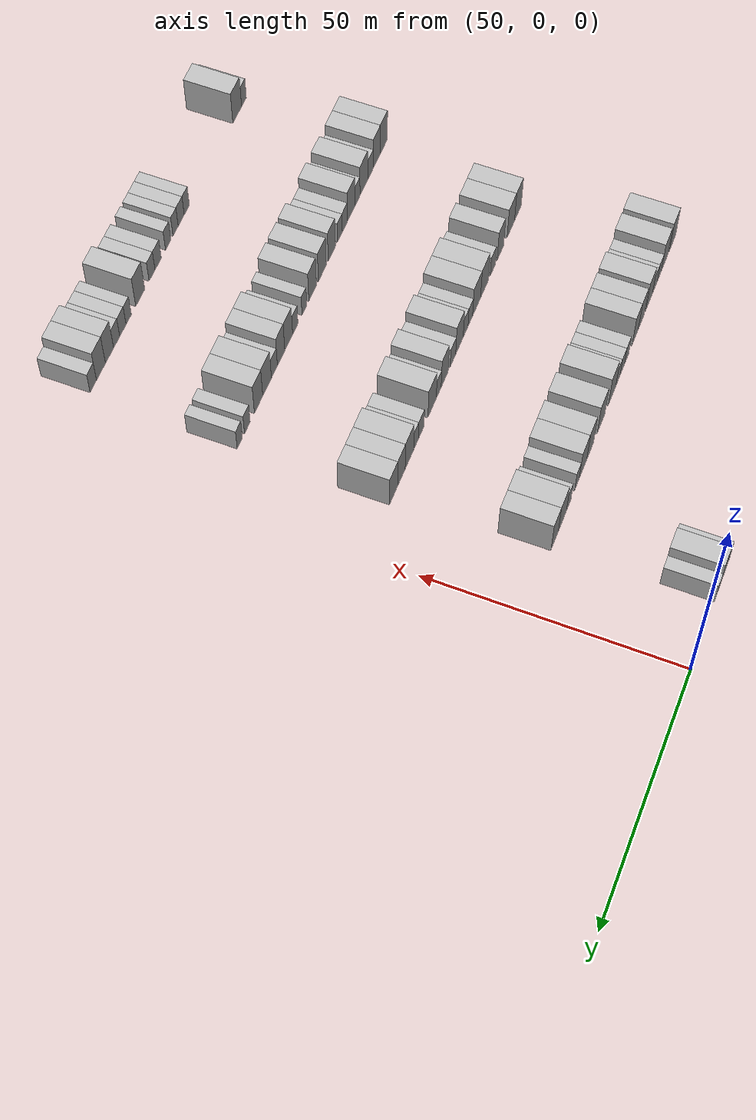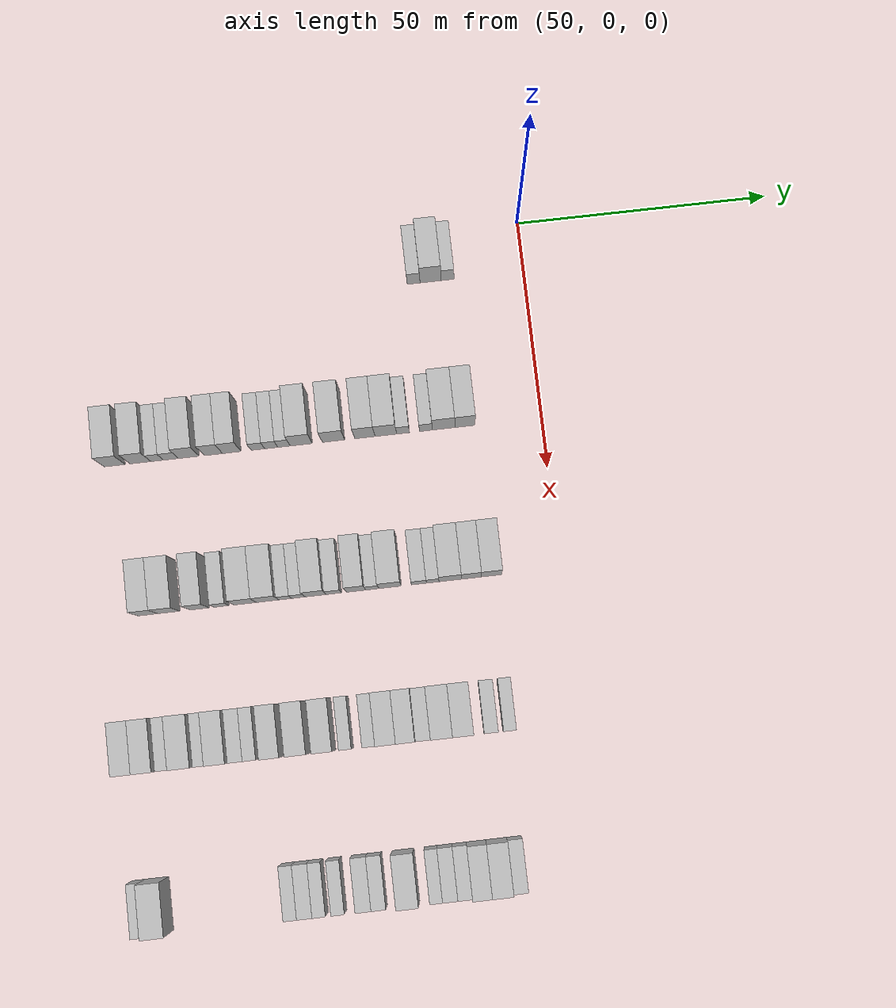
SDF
<sdf version="1.6">
 <world name="default">
  <model name="building_334">
   <static>1</static>
   <pose>55.0000 -22.0945 0 0.000000 0.000000 0.000000</pose>
   <link name="link">
    <pose>0 0 3.00 0 0 0</pose>
    <collision name="collision"><geometry><box><size>10.0000 2.5798 6.0000</size></box></geometry></collision>
    <visual name="visual">
     <cast_shadows>0</cast_shadows>
     <geometry><box><size>10.0000 2.5798 6.0000</size></box></geometry>
     <material>
      <script>
       <uri>model://HANNAS_wall/materials/scripts</uri>
       <uri>model://HANNAS_wall/materials/textures</uri>
       <name>vrc/HANNAS_wall</name>
      </script>
     </material>
    </visual>
   </link>
  </model>
  <model name="building_335">
   <static>1</static>
   <pose>55.0000 -18.6935 0 0.000000 0.000000 0.000000</pose>
   <link name="link">
    <pose>0 0 4.50 0 0 0</pose>
    <collision name="collision"><geometry><box><size>10.0000 4.2221 9.0000</size></box></geometry></collision>
    <visual name="visual">
     <cast_shadows>0</cast_shadows>
     <geometry><box><size>10.0000 4.2221 9.0000</size></box></geometry>
     <material>
      <script>
       <uri>model://HANNAS_wall/materials/scripts</uri>
       <uri>model://HANNAS_wall/materials/textures</uri>
       <name>vrc/HANNAS_wall</name>
      </script>
     </material>
    </visual>
   </link>
  </model>
  <model name="building_336">
   <static>1</static>
   <pose>55.0000 -15.2851 0 0.000000 0.000000 0.000000</pose>
   <link name="link">
    <pose>0 0 3.00 0 0 0</pose>
    <collision name="collision"><geometry><box><size>10.0000 2.5948 6.0000</size></box></geometry></collision>
    <visual name="visual">
     <cast_shadows>0</cast_shadows>
     <geometry><box><size>10.0000 2.5948 6.0000</size></box></geometry>
     <material>
      <script>
       <uri>model://HANNAS_wall/materials/scripts</uri>
       <uri>model://HANNAS_wall/materials/textures</uri>
       <name>vrc/HANNAS_wall</name>
      </script>
     </material>
    </visual>
   </link>
  </model>
  <model name="building_556">
   <static>1</static>
   <pose>85.0000 -84.5237 0 0.000000 0.000000 0.000000</pose>
   <link name="link">
    <pose>0 0 4.50 0 0 0</pose>
    <collision name="collision"><geometry><box><size>10.0000 4.1352 9.0000</size></box></geometry></collision>
    <visual name="visual">
     <cast_shadows>0</cast_shadows>
     <geometry><box><size>10.0000 4.1352 9.0000</size></box></geometry>
     <material>
      <script>
       <uri>model://HANNAS_wall/materials/scripts</uri>
       <uri>model://HANNAS_wall/materials/textures</uri>
       <name>vrc/HANNAS_wall</name>
      </script>
     </material>
    </visual>
   </link>
  </model>
  <model name="building_557">
   <static>1</static>
   <pose>85.0000 -79.4090 0 0.000000 0.000000 0.000000</pose>
   <link name="link">
    <pose>0 0 4.50 0 0 0</pose>
    <collision name="collision"><geometry><box><size>10.0000 4.0942 9.0000</size></box></geometry></collision>
    <visual name="visual">
     <cast_shadows>0</cast_shadows>
     <geometry><box><size>10.0000 4.0942 9.0000</size></box></geometry>
     <material>
      <script>
       <uri>model://HANNAS_wall/materials/scripts</uri>
       <uri>model://HANNAS_wall/materials/textures</uri>
       <name>vrc/HANNAS_wall</name>
      </script>
     </material>
    </visual>
   </link>
  </model>
  <model name="building_558">
   <static>1</static>
   <pose>85.0000 -76.1100 0 0.000000 0.000000 0.000000</pose>
   <link name="link">
    <pose>0 0 3.00 0 0 0</pose>
    <collision name="collision"><geometry><box><size>10.0000 2.5038 6.0000</size></box></geometry></collision>
    <visual name="visual">
     <cast_shadows>0</cast_shadows>
     <geometry><box><size>10.0000 2.5038 6.0000</size></box></geometry>
     <material>
      <script>
       <uri>model://HANNAS_wall/materials/scripts</uri>
       <uri>model://HANNAS_wall/materials/textures</uri>
       <name>vrc/HANNAS_wall</name>
      </script>
     </material>
    </visual>
   </link>
  </model>
  <model name="building_559">
   <static>1</static>
   <pose>85.0000 -73.3860 0 0.000000 0.000000 0.000000</pose>
   <link name="link">
    <pose>0 0 3.00 0 0 0</pose>
    <collision name="collision"><geometry><box><size>10.0000 2.9442 6.0000</size></box></geometry></collision>
    <visual name="visual">
     <cast_shadows>0</cast_shadows>
     <geometry><box><size>10.0000 2.9442 6.0000</size></box></geometry>
     <material>
      <script>
       <uri>model://HANNAS_wall/materials/scripts</uri>
       <uri>model://HANNAS_wall/materials/textures</uri>
       <name>vrc/HANNAS_wall</name>
      </script>
     </material>
    </visual>
   </link>
  </model>
  <model name="building_560">
   <static>1</static>
   <pose>85.0000 -69.8655 0 0.000000 0.000000 0.000000</pose>
   <link name="link">
    <pose>0 0 4.50 0 0 0</pose>
    <collision name="collision"><geometry><box><size>10.0000 4.0967 9.0000</size></box></geometry></collision>
    <visual name="visual">
     <cast_shadows>0</cast_shadows>
     <geometry><box><size>10.0000 4.0967 9.0000</size></box></geometry>
     <material>
      <script>
       <uri>model://HANNAS_wall/materials/scripts</uri>
       <uri>model://HANNAS_wall/materials/textures</uri>
       <name>vrc/HANNAS_wall</name>
      </script>
     </material>
    </visual>
   </link>
  </model>
  <model name="building_561">
   <static>1</static>
   <pose>85.0000 -65.0133 0 0.000000 0.000000 0.000000</pose>
   <link name="link">
    <pose>0 0 4.50 0 0 0</pose>
    <collision name="collision"><geometry><box><size>10.0000 3.6078 9.0000</size></box></geometry></collision>
    <visual name="visual">
     <cast_shadows>0</cast_shadows>
     <geometry><box><size>10.0000 3.6078 9.0000</size></box></geometry>
     <material>
      <script>
       <uri>model://HANNAS_wall/materials/scripts</uri>
       <uri>model://HANNAS_wall/materials/textures</uri>
       <name>vrc/HANNAS_wall</name>
      </script>
     </material>
    </visual>
   </link>
  </model>
  <model name="building_562">
   <static>1</static>
   <pose>85.0000 -61.3771 0 0.000000 0.000000 0.000000</pose>
   <link name="link">
    <pose>0 0 4.50 0 0 0</pose>
    <collision name="collision"><geometry><box><size>10.0000 3.6647 9.0000</size></box></geometry></collision>
    <visual name="visual">
     <cast_shadows>0</cast_shadows>
     <geometry><box><size>10.0000 3.6647 9.0000</size></box></geometry>
     <material>
      <script>
       <uri>model://HANNAS_wall/materials/scripts</uri>
       <uri>model://HANNAS_wall/materials/textures</uri>
       <name>vrc/HANNAS_wall</name>
      </script>
     </material>
    </visual>
   </link>
  </model>
  <model name="building_563">
   <static>1</static>
   <pose>85.0000 -56.2030 0 0.000000 0.000000 0.000000</pose>
   <link name="link">
    <pose>0 0 3.00 0 0 0</pose>
    <collision name="collision"><geometry><box><size>10.0000 2.6834 6.0000</size></box></geometry></collision>
    <visual name="visual">
     <cast_shadows>0</cast_shadows>
     <geometry><box><size>10.0000 2.6834 6.0000</size></box></geometry>
     <material>
      <script>
       <uri>model://HANNAS_wall/materials/scripts</uri>
       <uri>model://HANNAS_wall/materials/textures</uri>
       <name>vrc/HANNAS_wall</name>
      </script>
     </material>
    </visual>
   </link>
  </model>
  <model name="building_564">
   <static>1</static>
   <pose>85.0000 -53.5623 0 0.000000 0.000000 0.000000</pose>
   <link name="link">
    <pose>0 0 3.00 0 0 0</pose>
    <collision name="collision"><geometry><box><size>10.0000 2.5980 6.0000</size></box></geometry></collision>
    <visual name="visual">
     <cast_shadows>0</cast_shadows>
     <geometry><box><size>10.0000 2.5980 6.0000</size></box></geometry>
     <material>
      <script>
       <uri>model://HANNAS_wall/materials/scripts</uri>
       <uri>model://HANNAS_wall/materials/textures</uri>
       <name>vrc/HANNAS_wall</name>
      </script>
     </material>
    </visual>
   </link>
  </model>
  <model name="building_565">
   <static>1</static>
   <pose>85.0000 -51.0397 0 0.000000 0.000000 0.000000</pose>
   <link name="link">
    <pose>0 0 3.00 0 0 0</pose>
    <collision name="collision"><geometry><box><size>10.0000 2.4472 6.0000</size></box></geometry></collision>
    <visual name="visual">
     <cast_shadows>0</cast_shadows>
     <geometry><box><size>10.0000 2.4472 6.0000</size></box></geometry>
     <material>
      <script>
       <uri>model://HANNAS_wall/materials/scripts</uri>
       <uri>model://HANNAS_wall/materials/textures</uri>
       <name>vrc/HANNAS_wall</name>
      </script>
     </material>
    </visual>
   </link>
  </model>
  <model name="building_566">
   <static>1</static>
   <pose>85.0000 -47.6352 0 0.000000 0.000000 0.000000</pose>
   <link name="link">
    <pose>0 0 4.50 0 0 0</pose>
    <collision name="collision"><geometry><box><size>10.0000 4.3616 9.0000</size></box></geometry></collision>
    <visual name="visual">
     <cast_shadows>0</cast_shadows>
     <geometry><box><size>10.0000 4.3616 9.0000</size></box></geometry>
     <material>
      <script>
       <uri>model://HANNAS_wall/materials/scripts</uri>
       <uri>model://HANNAS_wall/materials/textures</uri>
       <name>vrc/HANNAS_wall</name>
      </script>
     </material>
    </visual>
   </link>
  </model>
  <model name="building_567">
   <static>1</static>
   <pose>85.0000 -41.2469 0 0.000000 0.000000 0.000000</pose>
   <link name="link">
    <pose>0 0 4.50 0 0 0</pose>
    <collision name="collision"><geometry><box><size>10.0000 4.4150 9.0000</size></box></geometry></collision>
    <visual name="visual">
     <cast_shadows>0</cast_shadows>
     <geometry><box><size>10.0000 4.4150 9.0000</size></box></geometry>
     <material>
      <script>
       <uri>model://HANNAS_wall/materials/scripts</uri>
       <uri>model://HANNAS_wall/materials/textures</uri>
       <name>vrc/HANNAS_wall</name>
      </script>
     </material>
    </visual>
   </link>
  </model>
  <model name="building_568">
   <static>1</static>
   <pose>85.0000 -35.0327 0 0.000000 0.000000 0.000000</pose>
   <link name="link">
    <pose>0 0 4.50 0 0 0</pose>
    <collision name="collision"><geometry><box><size>10.0000 4.0135 9.0000</size></box></geometry></collision>
    <visual name="visual">
     <cast_shadows>0</cast_shadows>
     <geometry><box><size>10.0000 4.0135 9.0000</size></box></geometry>
     <material>
      <script>
       <uri>model://HANNAS_wall/materials/scripts</uri>
       <uri>model://HANNAS_wall/materials/textures</uri>
       <name>vrc/HANNAS_wall</name>
      </script>
     </material>
    </visual>
   </link>
  </model>
  <model name="building_569">
   <static>1</static>
   <pose>85.0000 -30.8836 0 0.000000 0.000000 0.000000</pose>
   <link name="link">
    <pose>0 0 4.50 0 0 0</pose>
    <collision name="collision"><geometry><box><size>10.0000 4.2846 9.0000</size></box></geometry></collision>
    <visual name="visual">
     <cast_shadows>0</cast_shadows>
     <geometry><box><size>10.0000 4.2846 9.0000</size></box></geometry>
     <material>
      <script>
       <uri>model://HANNAS_wall/materials/scripts</uri>
       <uri>model://HANNAS_wall/materials/textures</uri>
       <name>vrc/HANNAS_wall</name>
      </script>
     </material>
    </visual>
   </link>
  </model>
  <model name="building_570">
   <static>1</static>
   <pose>85.0000 -27.4713 0 0.000000 0.000000 0.000000</pose>
   <link name="link">
    <pose>0 0 3.00 0 0 0</pose>
    <collision name="collision"><geometry><box><size>10.0000 2.5401 6.0000</size></box></geometry></collision>
    <visual name="visual">
     <cast_shadows>0</cast_shadows>
     <geometry><box><size>10.0000 2.5401 6.0000</size></box></geometry>
     <material>
      <script>
       <uri>model://HANNAS_wall/materials/scripts</uri>
       <uri>model://HANNAS_wall/materials/textures</uri>
       <name>vrc/HANNAS_wall</name>
      </script>
     </material>
    </visual>
   </link>
  </model>
  <model name="building_571">
   <static>1</static>
   <pose>85.0000 -22.9350 0 0.000000 0.000000 0.000000</pose>
   <link name="link">
    <pose>0 0 3.00 0 0 0</pose>
    <collision name="collision"><geometry><box><size>10.0000 2.5324 6.0000</size></box></geometry></collision>
    <visual name="visual">
     <cast_shadows>0</cast_shadows>
     <geometry><box><size>10.0000 2.5324 6.0000</size></box></geometry>
     <material>
      <script>
       <uri>model://HANNAS_wall/materials/scripts</uri>
       <uri>model://HANNAS_wall/materials/textures</uri>
       <name>vrc/HANNAS_wall</name>
      </script>
     </material>
    </visual>
   </link>
  </model>
  <model name="building_572">
   <static>1</static>
   <pose>85.0000 -19.4383 0 0.000000 0.000000 0.000000</pose>
   <link name="link">
    <pose>0 0 4.50 0 0 0</pose>
    <collision name="collision"><geometry><box><size>10.0000 4.4609 9.0000</size></box></geometry></collision>
    <visual name="visual">
     <cast_shadows>0</cast_shadows>
     <geometry><box><size>10.0000 4.4609 9.0000</size></box></geometry>
     <material>
      <script>
       <uri>model://HANNAS_wall/materials/scripts</uri>
       <uri>model://HANNAS_wall/materials/textures</uri>
       <name>vrc/HANNAS_wall</name>
      </script>
     </material>
    </visual>
   </link>
  </model>
  <model name="building_573">
   <static>1</static>
   <pose>85.0000 -15.2136 0 0.000000 0.000000 0.000000</pose>
   <link name="link">
    <pose>0 0 4.50 0 0 0</pose>
    <collision name="collision"><geometry><box><size>10.0000 3.9884 9.0000</size></box></geometry></collision>
    <visual name="visual">
     <cast_shadows>0</cast_shadows>
     <geometry><box><size>10.0000 3.9884 9.0000</size></box></geometry>
     <material>
      <script>
       <uri>model://HANNAS_wall/materials/scripts</uri>
       <uri>model://HANNAS_wall/materials/textures</uri>
       <name>vrc/HANNAS_wall</name>
      </script>
     </material>
    </visual>
   </link>
  </model>
  <model name="building_782">
   <static>1</static>
   <pose>115.0000 -80.4992 0 0.000000 0.000000 0.000000</pose>
   <link name="link">
    <pose>0 0 4.50 0 0 0</pose>
    <collision name="collision"><geometry><box><size>10.0000 3.8783 9.0000</size></box></geometry></collision>
    <visual name="visual">
     <cast_shadows>0</cast_shadows>
     <geometry><box><size>10.0000 3.8783 9.0000</size></box></geometry>
     <material>
      <script>
       <uri>model://HANNAS_wall/materials/scripts</uri>
       <uri>model://HANNAS_wall/materials/textures</uri>
       <name>vrc/HANNAS_wall</name>
      </script>
     </material>
    </visual>
   </link>
  </model>
  <model name="building_783">
   <static>1</static>
   <pose>115.0000 -76.4291 0 0.000000 0.000000 0.000000</pose>
   <link name="link">
    <pose>0 0 4.50 0 0 0</pose>
    <collision name="collision"><geometry><box><size>10.0000 4.2618 9.0000</size></box></geometry></collision>
    <visual name="visual">
     <cast_shadows>0</cast_shadows>
     <geometry><box><size>10.0000 4.2618 9.0000</size></box></geometry>
     <material>
      <script>
       <uri>model://HANNAS_wall/materials/scripts</uri>
       <uri>model://HANNAS_wall/materials/textures</uri>
       <name>vrc/HANNAS_wall</name>
      </script>
     </material>
    </visual>
   </link>
  </model>
  <model name="building_784">
   <static>1</static>
   <pose>115.0000 -70.4539 0 0.000000 0.000000 0.000000</pose>
   <link name="link">
    <pose>0 0 4.50 0 0 0</pose>
    <collision name="collision"><geometry><box><size>10.0000 3.6887 9.0000</size></box></geometry></collision>
    <visual name="visual">
     <cast_shadows>0</cast_shadows>
     <geometry><box><size>10.0000 3.6887 9.0000</size></box></geometry>
     <material>
      <script>
       <uri>model://HANNAS_wall/materials/scripts</uri>
       <uri>model://HANNAS_wall/materials/textures</uri>
       <name>vrc/HANNAS_wall</name>
      </script>
     </material>
    </visual>
   </link>
  </model>
  <model name="building_785">
   <static>1</static>
   <pose>115.0000 -66.1704 0 0.000000 0.000000 0.000000</pose>
   <link name="link">
    <pose>0 0 3.00 0 0 0</pose>
    <collision name="collision"><geometry><box><size>10.0000 2.8781 6.0000</size></box></geometry></collision>
    <visual name="visual">
     <cast_shadows>0</cast_shadows>
     <geometry><box><size>10.0000 2.8781 6.0000</size></box></geometry>
     <material>
      <script>
       <uri>model://HANNAS_wall/materials/scripts</uri>
       <uri>model://HANNAS_wall/materials/textures</uri>
       <name>vrc/HANNAS_wall</name>
      </script>
     </material>
    </visual>
   </link>
  </model>
  <model name="building_786">
   <static>1</static>
   <pose>115.0000 -61.5291 0 0.000000 0.000000 0.000000</pose>
   <link name="link">
    <pose>0 0 4.50 0 0 0</pose>
    <collision name="collision"><geometry><box><size>10.0000 4.4046 9.0000</size></box></geometry></collision>
    <visual name="visual">
     <cast_shadows>0</cast_shadows>
     <geometry><box><size>10.0000 4.4046 9.0000</size></box></geometry>
     <material>
      <script>
       <uri>model://HANNAS_wall/materials/scripts</uri>
       <uri>model://HANNAS_wall/materials/textures</uri>
       <name>vrc/HANNAS_wall</name>
      </script>
     </material>
    </visual>
   </link>
  </model>
  <model name="building_787">
   <static>1</static>
   <pose>115.0000 -57.1356 0 0.000000 0.000000 0.000000</pose>
   <link name="link">
    <pose>0 0 4.50 0 0 0</pose>
    <collision name="collision"><geometry><box><size>10.0000 4.3823 9.0000</size></box></geometry></collision>
    <visual name="visual">
     <cast_shadows>0</cast_shadows>
     <geometry><box><size>10.0000 4.3823 9.0000</size></box></geometry>
     <material>
      <script>
       <uri>model://HANNAS_wall/materials/scripts</uri>
       <uri>model://HANNAS_wall/materials/textures</uri>
       <name>vrc/HANNAS_wall</name>
      </script>
     </material>
    </visual>
   </link>
  </model>
  <model name="building_788">
   <static>1</static>
   <pose>115.0000 -53.6955 0 0.000000 0.000000 0.000000</pose>
   <link name="link">
    <pose>0 0 3.00 0 0 0</pose>
    <collision name="collision"><geometry><box><size>10.0000 2.4979 6.0000</size></box></geometry></collision>
    <visual name="visual">
     <cast_shadows>0</cast_shadows>
     <geometry><box><size>10.0000 2.4979 6.0000</size></box></geometry>
     <material>
      <script>
       <uri>model://HANNAS_wall/materials/scripts</uri>
       <uri>model://HANNAS_wall/materials/textures</uri>
       <name>vrc/HANNAS_wall</name>
      </script>
     </material>
    </visual>
   </link>
  </model>
  <model name="building_789">
   <static>1</static>
   <pose>115.0000 -51.1354 0 0.000000 0.000000 0.000000</pose>
   <link name="link">
    <pose>0 0 3.00 0 0 0</pose>
    <collision name="collision"><geometry><box><size>10.0000 2.6223 6.0000</size></box></geometry></collision>
    <visual name="visual">
     <cast_shadows>0</cast_shadows>
     <geometry><box><size>10.0000 2.6223 6.0000</size></box></geometry>
     <material>
      <script>
       <uri>model://HANNAS_wall/materials/scripts</uri>
       <uri>model://HANNAS_wall/materials/textures</uri>
       <name>vrc/HANNAS_wall</name>
      </script>
     </material>
    </visual>
   </link>
  </model>
  <model name="building_790">
   <static>1</static>
   <pose>115.0000 -47.7813 0 0.000000 0.000000 0.000000</pose>
   <link name="link">
    <pose>0 0 4.50 0 0 0</pose>
    <collision name="collision"><geometry><box><size>10.0000 4.0859 9.0000</size></box></geometry></collision>
    <visual name="visual">
     <cast_shadows>0</cast_shadows>
     <geometry><box><size>10.0000 4.0859 9.0000</size></box></geometry>
     <material>
      <script>
       <uri>model://HANNAS_wall/materials/scripts</uri>
       <uri>model://HANNAS_wall/materials/textures</uri>
       <name>vrc/HANNAS_wall</name>
      </script>
     </material>
    </visual>
   </link>
  </model>
  <model name="building_791">
   <static>1</static>
   <pose>115.0000 -44.2460 0 0.000000 0.000000 0.000000</pose>
   <link name="link">
    <pose>0 0 3.00 0 0 0</pose>
    <collision name="collision"><geometry><box><size>10.0000 2.9849 6.0000</size></box></geometry></collision>
    <visual name="visual">
     <cast_shadows>0</cast_shadows>
     <geometry><box><size>10.0000 2.9849 6.0000</size></box></geometry>
     <material>
      <script>
       <uri>model://HANNAS_wall/materials/scripts</uri>
       <uri>model://HANNAS_wall/materials/textures</uri>
       <name>vrc/HANNAS_wall</name>
      </script>
     </material>
    </visual>
   </link>
  </model>
  <model name="building_792">
   <static>1</static>
   <pose>115.0000 -39.8750 0 0.000000 0.000000 0.000000</pose>
   <link name="link">
    <pose>0 0 4.50 0 0 0</pose>
    <collision name="collision"><geometry><box><size>10.0000 3.7569 9.0000</size></box></geometry></collision>
    <visual name="visual">
     <cast_shadows>0</cast_shadows>
     <geometry><box><size>10.0000 3.7569 9.0000</size></box></geometry>
     <material>
      <script>
       <uri>model://HANNAS_wall/materials/scripts</uri>
       <uri>model://HANNAS_wall/materials/textures</uri>
       <name>vrc/HANNAS_wall</name>
      </script>
     </material>
    </visual>
   </link>
  </model>
  <model name="building_793">
   <static>1</static>
   <pose>115.0000 -36.7172 0 0.000000 0.000000 0.000000</pose>
   <link name="link">
    <pose>0 0 3.00 0 0 0</pose>
    <collision name="collision"><geometry><box><size>10.0000 2.5587 6.0000</size></box></geometry></collision>
    <visual name="visual">
     <cast_shadows>0</cast_shadows>
     <geometry><box><size>10.0000 2.5587 6.0000</size></box></geometry>
     <material>
      <script>
       <uri>model://HANNAS_wall/materials/scripts</uri>
       <uri>model://HANNAS_wall/materials/textures</uri>
       <name>vrc/HANNAS_wall</name>
      </script>
     </material>
    </visual>
   </link>
  </model>
  <model name="building_794">
   <static>1</static>
   <pose>115.0000 -33.2502 0 0.000000 0.000000 0.000000</pose>
   <link name="link">
    <pose>0 0 4.50 0 0 0</pose>
    <collision name="collision"><geometry><box><size>10.0000 4.3753 9.0000</size></box></geometry></collision>
    <visual name="visual">
     <cast_shadows>0</cast_shadows>
     <geometry><box><size>10.0000 4.3753 9.0000</size></box></geometry>
     <material>
      <script>
       <uri>model://HANNAS_wall/materials/scripts</uri>
       <uri>model://HANNAS_wall/materials/textures</uri>
       <name>vrc/HANNAS_wall</name>
      </script>
     </material>
    </visual>
   </link>
  </model>
  <model name="building_795">
   <static>1</static>
   <pose>115.0000 -27.6089 0 0.000000 0.000000 0.000000</pose>
   <link name="link">
    <pose>0 0 3.00 0 0 0</pose>
    <collision name="collision"><geometry><box><size>10.0000 2.9075 6.0000</size></box></geometry></collision>
    <visual name="visual">
     <cast_shadows>0</cast_shadows>
     <geometry><box><size>10.0000 2.9075 6.0000</size></box></geometry>
     <material>
      <script>
       <uri>model://HANNAS_wall/materials/scripts</uri>
       <uri>model://HANNAS_wall/materials/textures</uri>
       <name>vrc/HANNAS_wall</name>
      </script>
     </material>
    </visual>
   </link>
  </model>
  <model name="building_796">
   <static>1</static>
   <pose>115.0000 -24.9311 0 0.000000 0.000000 0.000000</pose>
   <link name="link">
    <pose>0 0 3.00 0 0 0</pose>
    <collision name="collision"><geometry><box><size>10.0000 2.4480 6.0000</size></box></geometry></collision>
    <visual name="visual">
     <cast_shadows>0</cast_shadows>
     <geometry><box><size>10.0000 2.4480 6.0000</size></box></geometry>
     <material>
      <script>
       <uri>model://HANNAS_wall/materials/scripts</uri>
       <uri>model://HANNAS_wall/materials/textures</uri>
       <name>vrc/HANNAS_wall</name>
      </script>
     </material>
    </visual>
   </link>
  </model>
  <model name="building_797">
   <static>1</static>
   <pose>115.0000 -21.5387 0 0.000000 0.000000 0.000000</pose>
   <link name="link">
    <pose>0 0 4.50 0 0 0</pose>
    <collision name="collision"><geometry><box><size>10.0000 4.3368 9.0000</size></box></geometry></collision>
    <visual name="visual">
     <cast_shadows>0</cast_shadows>
     <geometry><box><size>10.0000 4.3368 9.0000</size></box></geometry>
     <material>
      <script>
       <uri>model://HANNAS_wall/materials/scripts</uri>
       <uri>model://HANNAS_wall/materials/textures</uri>
       <name>vrc/HANNAS_wall</name>
      </script>
     </material>
    </visual>
   </link>
  </model>
  <model name="building_798">
   <static>1</static>
   <pose>115.0000 -17.4464 0 0.000000 0.000000 0.000000</pose>
   <link name="link">
    <pose>0 0 4.50 0 0 0</pose>
    <collision name="collision"><geometry><box><size>10.0000 3.8478 9.0000</size></box></geometry></collision>
    <visual name="visual">
     <cast_shadows>0</cast_shadows>
     <geometry><box><size>10.0000 3.8478 9.0000</size></box></geometry>
     <material>
      <script>
       <uri>model://HANNAS_wall/materials/scripts</uri>
       <uri>model://HANNAS_wall/materials/textures</uri>
       <name>vrc/HANNAS_wall</name>
      </script>
     </material>
    </visual>
   </link>
  </model>
  <model name="building_799">
   <static>1</static>
   <pose>115.0000 -13.5128 0 0.000000 0.000000 0.000000</pose>
   <link name="link">
    <pose>0 0 4.50 0 0 0</pose>
    <collision name="collision"><geometry><box><size>10.0000 4.0194 9.0000</size></box></geometry></collision>
    <visual name="visual">
     <cast_shadows>0</cast_shadows>
     <geometry><box><size>10.0000 4.0194 9.0000</size></box></geometry>
     <material>
      <script>
       <uri>model://HANNAS_wall/materials/scripts</uri>
       <uri>model://HANNAS_wall/materials/textures</uri>
       <name>vrc/HANNAS_wall</name>
      </script>
     </material>
    </visual>
   </link>
  </model>
  <model name="building_1016">
   <static>1</static>
   <pose>145.0000 -86.3324 0 0.000000 0.000000 0.000000</pose>
   <link name="link">
    <pose>0 0 4.50 0 0 0</pose>
    <collision name="collision"><geometry><box><size>10.0000 3.8117 9.0000</size></box></geometry></collision>
    <visual name="visual">
     <cast_shadows>0</cast_shadows>
     <geometry><box><size>10.0000 3.8117 9.0000</size></box></geometry>
     <material>
      <script>
       <uri>model://HANNAS_wall/materials/scripts</uri>
       <uri>model://HANNAS_wall/materials/textures</uri>
       <name>vrc/HANNAS_wall</name>
      </script>
     </material>
    </visual>
   </link>
  </model>
  <model name="building_1017">
   <static>1</static>
   <pose>145.0000 -82.4956 0 0.000000 0.000000 0.000000</pose>
   <link name="link">
    <pose>0 0 4.50 0 0 0</pose>
    <collision name="collision"><geometry><box><size>10.0000 3.8619 9.0000</size></box></geometry></collision>
    <visual name="visual">
     <cast_shadows>0</cast_shadows>
     <geometry><box><size>10.0000 3.8619 9.0000</size></box></geometry>
     <material>
      <script>
       <uri>model://HANNAS_wall/materials/scripts</uri>
       <uri>model://HANNAS_wall/materials/textures</uri>
       <name>vrc/HANNAS_wall</name>
      </script>
     </material>
    </visual>
   </link>
  </model>
  <model name="building_1018">
   <static>1</static>
   <pose>145.0000 -79.1009 0 0.000000 0.000000 0.000000</pose>
   <link name="link">
    <pose>0 0 3.00 0 0 0</pose>
    <collision name="collision"><geometry><box><size>10.0000 2.9275 6.0000</size></box></geometry></collision>
    <visual name="visual">
     <cast_shadows>0</cast_shadows>
     <geometry><box><size>10.0000 2.9275 6.0000</size></box></geometry>
     <material>
      <script>
       <uri>model://HANNAS_wall/materials/scripts</uri>
       <uri>model://HANNAS_wall/materials/textures</uri>
       <name>vrc/HANNAS_wall</name>
      </script>
     </material>
    </visual>
   </link>
  </model>
  <model name="building_1019">
   <static>1</static>
   <pose>145.0000 -75.5444 0 0.000000 0.000000 0.000000</pose>
   <link name="link">
    <pose>0 0 4.50 0 0 0</pose>
    <collision name="collision"><geometry><box><size>10.0000 4.1856 9.0000</size></box></geometry></collision>
    <visual name="visual">
     <cast_shadows>0</cast_shadows>
     <geometry><box><size>10.0000 4.1856 9.0000</size></box></geometry>
     <material>
      <script>
       <uri>model://HANNAS_wall/materials/scripts</uri>
       <uri>model://HANNAS_wall/materials/textures</uri>
       <name>vrc/HANNAS_wall</name>
      </script>
     </material>
    </visual>
   </link>
  </model>
  <model name="building_1020">
   <static>1</static>
   <pose>145.0000 -72.1487 0 0.000000 0.000000 0.000000</pose>
   <link name="link">
    <pose>0 0 3.00 0 0 0</pose>
    <collision name="collision"><geometry><box><size>10.0000 2.6057 6.0000</size></box></geometry></collision>
    <visual name="visual">
     <cast_shadows>0</cast_shadows>
     <geometry><box><size>10.0000 2.6057 6.0000</size></box></geometry>
     <material>
      <script>
       <uri>model://HANNAS_wall/materials/scripts</uri>
       <uri>model://HANNAS_wall/materials/textures</uri>
       <name>vrc/HANNAS_wall</name>
      </script>
     </material>
    </visual>
   </link>
  </model>
  <model name="building_1021">
   <static>1</static>
   <pose>145.0000 -68.8773 0 0.000000 0.000000 0.000000</pose>
   <link name="link">
    <pose>0 0 4.50 0 0 0</pose>
    <collision name="collision"><geometry><box><size>10.0000 3.9370 9.0000</size></box></geometry></collision>
    <visual name="visual">
     <cast_shadows>0</cast_shadows>
     <geometry><box><size>10.0000 3.9370 9.0000</size></box></geometry>
     <material>
      <script>
       <uri>model://HANNAS_wall/materials/scripts</uri>
       <uri>model://HANNAS_wall/materials/textures</uri>
       <name>vrc/HANNAS_wall</name>
      </script>
     </material>
    </visual>
   </link>
  </model>
  <model name="building_1022">
   <static>1</static>
   <pose>145.0000 -65.5135 0 0.000000 0.000000 0.000000</pose>
   <link name="link">
    <pose>0 0 3.00 0 0 0</pose>
    <collision name="collision"><geometry><box><size>10.0000 2.7908 6.0000</size></box></geometry></collision>
    <visual name="visual">
     <cast_shadows>0</cast_shadows>
     <geometry><box><size>10.0000 2.7908 6.0000</size></box></geometry>
     <material>
      <script>
       <uri>model://HANNAS_wall/materials/scripts</uri>
       <uri>model://HANNAS_wall/materials/textures</uri>
       <name>vrc/HANNAS_wall</name>
      </script>
     </material>
    </visual>
   </link>
  </model>
  <model name="building_1023">
   <static>1</static>
   <pose>145.0000 -62.8492 0 0.000000 0.000000 0.000000</pose>
   <link name="link">
    <pose>0 0 3.00 0 0 0</pose>
    <collision name="collision"><geometry><box><size>10.0000 2.5377 6.0000</size></box></geometry></collision>
    <visual name="visual">
     <cast_shadows>0</cast_shadows>
     <geometry><box><size>10.0000 2.5377 6.0000</size></box></geometry>
     <material>
      <script>
       <uri>model://HANNAS_wall/materials/scripts</uri>
       <uri>model://HANNAS_wall/materials/textures</uri>
       <name>vrc/HANNAS_wall</name>
      </script>
     </material>
    </visual>
   </link>
  </model>
  <model name="building_1024">
   <static>1</static>
   <pose>145.0000 -58.7127 0 0.000000 0.000000 0.000000</pose>
   <link name="link">
    <pose>0 0 4.50 0 0 0</pose>
    <collision name="collision"><geometry><box><size>10.0000 3.7354 9.0000</size></box></geometry></collision>
    <visual name="visual">
     <cast_shadows>0</cast_shadows>
     <geometry><box><size>10.0000 3.7354 9.0000</size></box></geometry>
     <material>
      <script>
       <uri>model://HANNAS_wall/materials/scripts</uri>
       <uri>model://HANNAS_wall/materials/textures</uri>
       <name>vrc/HANNAS_wall</name>
      </script>
     </material>
    </visual>
   </link>
  </model>
  <model name="building_1025">
   <static>1</static>
   <pose>145.0000 -53.8423 0 0.000000 0.000000 0.000000</pose>
   <link name="link">
    <pose>0 0 4.50 0 0 0</pose>
    <collision name="collision"><geometry><box><size>10.0000 4.0053 9.0000</size></box></geometry></collision>
    <visual name="visual">
     <cast_shadows>0</cast_shadows>
     <geometry><box><size>10.0000 4.0053 9.0000</size></box></geometry>
     <material>
      <script>
       <uri>model://HANNAS_wall/materials/scripts</uri>
       <uri>model://HANNAS_wall/materials/textures</uri>
       <name>vrc/HANNAS_wall</name>
      </script>
     </material>
    </visual>
   </link>
  </model>
  <model name="building_1026">
   <static>1</static>
   <pose>145.0000 -48.9082 0 0.000000 0.000000 0.000000</pose>
   <link name="link">
    <pose>0 0 4.50 0 0 0</pose>
    <collision name="collision"><geometry><box><size>10.0000 3.8629 9.0000</size></box></geometry></collision>
    <visual name="visual">
     <cast_shadows>0</cast_shadows>
     <geometry><box><size>10.0000 3.8629 9.0000</size></box></geometry>
     <material>
      <script>
       <uri>model://HANNAS_wall/materials/scripts</uri>
       <uri>model://HANNAS_wall/materials/textures</uri>
       <name>vrc/HANNAS_wall</name>
      </script>
     </material>
    </visual>
   </link>
  </model>
  <model name="building_1027">
   <static>1</static>
   <pose>145.0000 -44.7737 0 0.000000 0.000000 0.000000</pose>
   <link name="link">
    <pose>0 0 3.00 0 0 0</pose>
    <collision name="collision"><geometry><box><size>10.0000 2.4060 6.0000</size></box></geometry></collision>
    <visual name="visual">
     <cast_shadows>0</cast_shadows>
     <geometry><box><size>10.0000 2.4060 6.0000</size></box></geometry>
     <material>
      <script>
       <uri>model://HANNAS_wall/materials/scripts</uri>
       <uri>model://HANNAS_wall/materials/textures</uri>
       <name>vrc/HANNAS_wall</name>
      </script>
     </material>
    </visual>
   </link>
  </model>
  <model name="building_1028">
   <static>1</static>
   <pose>145.0000 -40.2574 0 0.000000 0.000000 0.000000</pose>
   <link name="link">
    <pose>0 0 3.00 0 0 0</pose>
    <collision name="collision"><geometry><box><size>10.0000 2.6267 6.0000</size></box></geometry></collision>
    <visual name="visual">
     <cast_shadows>0</cast_shadows>
     <geometry><box><size>10.0000 2.6267 6.0000</size></box></geometry>
     <material>
      <script>
       <uri>model://HANNAS_wall/materials/scripts</uri>
       <uri>model://HANNAS_wall/materials/textures</uri>
       <name>vrc/HANNAS_wall</name>
      </script>
     </material>
    </visual>
   </link>
  </model>
  <model name="building_1029">
   <static>1</static>
   <pose>145.0000 -37.0147 0 0.000000 0.000000 0.000000</pose>
   <link name="link">
    <pose>0 0 4.50 0 0 0</pose>
    <collision name="collision"><geometry><box><size>10.0000 3.8586 9.0000</size></box></geometry></collision>
    <visual name="visual">
     <cast_shadows>0</cast_shadows>
     <geometry><box><size>10.0000 3.8586 9.0000</size></box></geometry>
     <material>
      <script>
       <uri>model://HANNAS_wall/materials/scripts</uri>
       <uri>model://HANNAS_wall/materials/textures</uri>
       <name>vrc/HANNAS_wall</name>
      </script>
     </material>
    </visual>
   </link>
  </model>
  <model name="building_1030">
   <static>1</static>
   <pose>145.0000 -33.2792 0 0.000000 0.000000 0.000000</pose>
   <link name="link">
    <pose>0 0 4.50 0 0 0</pose>
    <collision name="collision"><geometry><box><size>10.0000 3.6124 9.0000</size></box></geometry></collision>
    <visual name="visual">
     <cast_shadows>0</cast_shadows>
     <geometry><box><size>10.0000 3.6124 9.0000</size></box></geometry>
     <material>
      <script>
       <uri>model://HANNAS_wall/materials/scripts</uri>
       <uri>model://HANNAS_wall/materials/textures</uri>
       <name>vrc/HANNAS_wall</name>
      </script>
     </material>
    </visual>
   </link>
  </model>
  <model name="building_1031">
   <static>1</static>
   <pose>145.0000 -30.0190 0 0.000000 0.000000 0.000000</pose>
   <link name="link">
    <pose>0 0 3.00 0 0 0</pose>
    <collision name="collision"><geometry><box><size>10.0000 2.9082 6.0000</size></box></geometry></collision>
    <visual name="visual">
     <cast_shadows>0</cast_shadows>
     <geometry><box><size>10.0000 2.9082 6.0000</size></box></geometry>
     <material>
      <script>
       <uri>model://HANNAS_wall/materials/scripts</uri>
       <uri>model://HANNAS_wall/materials/textures</uri>
       <name>vrc/HANNAS_wall</name>
      </script>
     </material>
    </visual>
   </link>
  </model>
  <model name="building_1032">
   <static>1</static>
   <pose>145.0000 -26.4924 0 0.000000 0.000000 0.000000</pose>
   <link name="link">
    <pose>0 0 4.50 0 0 0</pose>
    <collision name="collision"><geometry><box><size>10.0000 4.1449 9.0000</size></box></geometry></collision>
    <visual name="visual">
     <cast_shadows>0</cast_shadows>
     <geometry><box><size>10.0000 4.1449 9.0000</size></box></geometry>
     <material>
      <script>
       <uri>model://HANNAS_wall/materials/scripts</uri>
       <uri>model://HANNAS_wall/materials/textures</uri>
       <name>vrc/HANNAS_wall</name>
      </script>
     </material>
    </visual>
   </link>
  </model>
  <model name="building_1033">
   <static>1</static>
   <pose>145.0000 -22.4235 0 0.000000 0.000000 0.000000</pose>
   <link name="link">
    <pose>0 0 4.50 0 0 0</pose>
    <collision name="collision"><geometry><box><size>10.0000 3.9930 9.0000</size></box></geometry></collision>
    <visual name="visual">
     <cast_shadows>0</cast_shadows>
     <geometry><box><size>10.0000 3.9930 9.0000</size></box></geometry>
     <material>
      <script>
       <uri>model://HANNAS_wall/materials/scripts</uri>
       <uri>model://HANNAS_wall/materials/textures</uri>
       <name>vrc/HANNAS_wall</name>
      </script>
     </material>
    </visual>
   </link>
  </model>
  <model name="building_1034">
   <static>1</static>
   <pose>145.0000 -17.0929 0 0.000000 0.000000 0.000000</pose>
   <link name="link">
    <pose>0 0 3.00 0 0 0</pose>
    <collision name="collision"><geometry><box><size>10.0000 2.6681 6.0000</size></box></geometry></collision>
    <visual name="visual">
     <cast_shadows>0</cast_shadows>
     <geometry><box><size>10.0000 2.6681 6.0000</size></box></geometry>
     <material>
      <script>
       <uri>model://HANNAS_wall/materials/scripts</uri>
       <uri>model://HANNAS_wall/materials/textures</uri>
       <name>vrc/HANNAS_wall</name>
      </script>
     </material>
    </visual>
   </link>
  </model>
  <model name="building_1035">
   <static>1</static>
   <pose>145.0000 -13.5479 0 0.000000 0.000000 0.000000</pose>
   <link name="link">
    <pose>0 0 3.00 0 0 0</pose>
    <collision name="collision"><geometry><box><size>10.0000 2.4219 6.0000</size></box></geometry></collision>
    <visual name="visual">
     <cast_shadows>0</cast_shadows>
     <geometry><box><size>10.0000 2.4219 6.0000</size></box></geometry>
     <material>
      <script>
       <uri>model://HANNAS_wall/materials/scripts</uri>
       <uri>model://HANNAS_wall/materials/textures</uri>
       <name>vrc/HANNAS_wall</name>
      </script>
     </material>
    </visual>
   </link>
  </model>
  <model name="building_1251">
   <static>1</static>
   <pose>175.0000 -86.5719 0 0.000000 0.000000 0.000000</pose>
   <link name="link">
    <pose>0 0 3.00 0 0 0</pose>
    <collision name="collision"><geometry><box><size>10.0000 2.4020 6.0000</size></box></geometry></collision>
    <visual name="visual">
     <cast_shadows>0</cast_shadows>
     <geometry><box><size>10.0000 2.4020 6.0000</size></box></geometry>
     <material>
      <script>
       <uri>model://HANNAS_wall/materials/scripts</uri>
       <uri>model://HANNAS_wall/materials/textures</uri>
       <name>vrc/HANNAS_wall</name>
      </script>
     </material>
    </visual>
   </link>
  </model>
  <model name="building_1252">
   <static>1</static>
   <pose>175.0000 -83.1354 0 0.000000 0.000000 0.000000</pose>
   <link name="link">
    <pose>0 0 4.50 0 0 0</pose>
    <collision name="collision"><geometry><box><size>10.0000 4.4709 9.0000</size></box></geometry></collision>
    <visual name="visual">
     <cast_shadows>0</cast_shadows>
     <geometry><box><size>10.0000 4.4709 9.0000</size></box></geometry>
     <material>
      <script>
       <uri>model://HANNAS_wall/materials/scripts</uri>
       <uri>model://HANNAS_wall/materials/textures</uri>
       <name>vrc/HANNAS_wall</name>
      </script>
     </material>
    </visual>
   </link>
  </model>
  <model name="building_1253">
   <static>1</static>
   <pose>175.0000 -58.1275 0 0.000000 0.000000 0.000000</pose>
   <link name="link">
    <pose>0 0 3.00 0 0 0</pose>
    <collision name="collision"><geometry><box><size>10.0000 2.5150 6.0000</size></box></geometry></collision>
    <visual name="visual">
     <cast_shadows>0</cast_shadows>
     <geometry><box><size>10.0000 2.5150 6.0000</size></box></geometry>
     <material>
      <script>
       <uri>model://HANNAS_wall/materials/scripts</uri>
       <uri>model://HANNAS_wall/materials/textures</uri>
       <name>vrc/HANNAS_wall</name>
      </script>
     </material>
    </visual>
   </link>
  </model>
  <model name="building_1254">
   <static>1</static>
   <pose>175.0000 -55.4348 0 0.000000 0.000000 0.000000</pose>
   <link name="link">
    <pose>0 0 3.00 0 0 0</pose>
    <collision name="collision"><geometry><box><size>10.0000 2.8702 6.0000</size></box></geometry></collision>
    <visual name="visual">
     <cast_shadows>0</cast_shadows>
     <geometry><box><size>10.0000 2.8702 6.0000</size></box></geometry>
     <material>
      <script>
       <uri>model://HANNAS_wall/materials/scripts</uri>
       <uri>model://HANNAS_wall/materials/textures</uri>
       <name>vrc/HANNAS_wall</name>
      </script>
     </material>
    </visual>
   </link>
  </model>
  <model name="building_1255">
   <static>1</static>
   <pose>175.0000 -52.7540 0 0.000000 0.000000 0.000000</pose>
   <link name="link">
    <pose>0 0 3.00 0 0 0</pose>
    <collision name="collision"><geometry><box><size>10.0000 2.4915 6.0000</size></box></geometry></collision>
    <visual name="visual">
     <cast_shadows>0</cast_shadows>
     <geometry><box><size>10.0000 2.4915 6.0000</size></box></geometry>
     <material>
      <script>
       <uri>model://HANNAS_wall/materials/scripts</uri>
       <uri>model://HANNAS_wall/materials/textures</uri>
       <name>vrc/HANNAS_wall</name>
      </script>
     </material>
    </visual>
   </link>
  </model>
  <model name="building_1256">
   <static>1</static>
   <pose>175.0000 -49.2482 0 0.000000 0.000000 0.000000</pose>
   <link name="link">
    <pose>0 0 3.00 0 0 0</pose>
    <collision name="collision"><geometry><box><size>10.0000 2.5201 6.0000</size></box></geometry></collision>
    <visual name="visual">
     <cast_shadows>0</cast_shadows>
     <geometry><box><size>10.0000 2.5201 6.0000</size></box></geometry>
     <material>
      <script>
       <uri>model://HANNAS_wall/materials/scripts</uri>
       <uri>model://HANNAS_wall/materials/textures</uri>
       <name>vrc/HANNAS_wall</name>
      </script>
     </material>
    </visual>
   </link>
  </model>
  <model name="building_1257">
   <static>1</static>
   <pose>175.0000 -44.5090 0 0.000000 0.000000 0.000000</pose>
   <link name="link">
    <pose>0 0 3.00 0 0 0</pose>
    <collision name="collision"><geometry><box><size>10.0000 2.9581 6.0000</size></box></geometry></collision>
    <visual name="visual">
     <cast_shadows>0</cast_shadows>
     <geometry><box><size>10.0000 2.9581 6.0000</size></box></geometry>
     <material>
      <script>
       <uri>model://HANNAS_wall/materials/scripts</uri>
       <uri>model://HANNAS_wall/materials/textures</uri>
       <name>vrc/HANNAS_wall</name>
      </script>
     </material>
    </visual>
   </link>
  </model>
  <model name="building_1258">
   <static>1</static>
   <pose>175.0000 -41.6477 0 0.000000 0.000000 0.000000</pose>
   <link name="link">
    <pose>0 0 3.00 0 0 0</pose>
    <collision name="collision"><geometry><box><size>10.0000 2.7645 6.0000</size></box></geometry></collision>
    <visual name="visual">
     <cast_shadows>0</cast_shadows>
     <geometry><box><size>10.0000 2.7645 6.0000</size></box></geometry>
     <material>
      <script>
       <uri>model://HANNAS_wall/materials/scripts</uri>
       <uri>model://HANNAS_wall/materials/textures</uri>
       <name>vrc/HANNAS_wall</name>
      </script>
     </material>
    </visual>
   </link>
  </model>
  <model name="building_1259">
   <static>1</static>
   <pose>175.0000 -36.1836 0 0.000000 0.000000 0.000000</pose>
   <link name="link">
    <pose>0 0 4.50 0 0 0</pose>
    <collision name="collision"><geometry><box><size>10.0000 4.1636 9.0000</size></box></geometry></collision>
    <visual name="visual">
     <cast_shadows>0</cast_shadows>
     <geometry><box><size>10.0000 4.1636 9.0000</size></box></geometry>
     <material>
      <script>
       <uri>model://HANNAS_wall/materials/scripts</uri>
       <uri>model://HANNAS_wall/materials/textures</uri>
       <name>vrc/HANNAS_wall</name>
      </script>
     </material>
    </visual>
   </link>
  </model>
  <model name="building_1260">
   <static>1</static>
   <pose>175.0000 -30.8961 0 0.000000 0.000000 0.000000</pose>
   <link name="link">
    <pose>0 0 3.00 0 0 0</pose>
    <collision name="collision"><geometry><box><size>10.0000 2.4114 6.0000</size></box></geometry></collision>
    <visual name="visual">
     <cast_shadows>0</cast_shadows>
     <geometry><box><size>10.0000 2.4114 6.0000</size></box></geometry>
     <material>
      <script>
       <uri>model://HANNAS_wall/materials/scripts</uri>
       <uri>model://HANNAS_wall/materials/textures</uri>
       <name>vrc/HANNAS_wall</name>
      </script>
     </material>
    </visual>
   </link>
  </model>
  <model name="building_1261">
   <static>1</static>
   <pose>175.0000 -28.2622 0 0.000000 0.000000 0.000000</pose>
   <link name="link">
    <pose>0 0 3.00 0 0 0</pose>
    <collision name="collision"><geometry><box><size>10.0000 2.8566 6.0000</size></box></geometry></collision>
    <visual name="visual">
     <cast_shadows>0</cast_shadows>
     <geometry><box><size>10.0000 2.8566 6.0000</size></box></geometry>
     <material>
      <script>
       <uri>model://HANNAS_wall/materials/scripts</uri>
       <uri>model://HANNAS_wall/materials/textures</uri>
       <name>vrc/HANNAS_wall</name>
      </script>
     </material>
    </visual>
   </link>
  </model>
  <model name="building_1262">
   <static>1</static>
   <pose>175.0000 -25.4601 0 0.000000 0.000000 0.000000</pose>
   <link name="link">
    <pose>0 0 3.00 0 0 0</pose>
    <collision name="collision"><geometry><box><size>10.0000 2.7475 6.0000</size></box></geometry></collision>
    <visual name="visual">
     <cast_shadows>0</cast_shadows>
     <geometry><box><size>10.0000 2.7475 6.0000</size></box></geometry>
     <material>
      <script>
       <uri>model://HANNAS_wall/materials/scripts</uri>
       <uri>model://HANNAS_wall/materials/textures</uri>
       <name>vrc/HANNAS_wall</name>
      </script>
     </material>
    </visual>
   </link>
  </model>
  <model name="building_1263">
   <static>1</static>
   <pose>175.0000 -22.2653 0 0.000000 0.000000 0.000000</pose>
   <link name="link">
    <pose>0 0 4.50 0 0 0</pose>
    <collision name="collision"><geometry><box><size>10.0000 3.6422 9.0000</size></box></geometry></collision>
    <visual name="visual">
     <cast_shadows>0</cast_shadows>
     <geometry><box><size>10.0000 3.6422 9.0000</size></box></geometry>
     <material>
      <script>
       <uri>model://HANNAS_wall/materials/scripts</uri>
       <uri>model://HANNAS_wall/materials/textures</uri>
       <name>vrc/HANNAS_wall</name>
      </script>
     </material>
    </visual>
   </link>
  </model>
  <model name="building_1264">
   <static>1</static>
   <pose>175.0000 -18.4553 0 0.000000 0.000000 0.000000</pose>
   <link name="link">
    <pose>0 0 4.50 0 0 0</pose>
    <collision name="collision"><geometry><box><size>10.0000 3.9776 9.0000</size></box></geometry></collision>
    <visual name="visual">
     <cast_shadows>0</cast_shadows>
     <geometry><box><size>10.0000 3.9776 9.0000</size></box></geometry>
     <material>
      <script>
       <uri>model://HANNAS_wall/materials/scripts</uri>
       <uri>model://HANNAS_wall/materials/textures</uri>
       <name>vrc/HANNAS_wall</name>
      </script>
     </material>
    </visual>
   </link>
  </model>
  <model name="building_1265">
   <static>1</static>
   <pose>175.0000 -15.0436 0 0.000000 0.000000 0.000000</pose>
   <link name="link">
    <pose>0 0 3.00 0 0 0</pose>
    <collision name="collision"><geometry><box><size>10.0000 2.8458 6.0000</size></box></geometry></collision>
    <visual name="visual">
     <cast_shadows>0</cast_shadows>
     <geometry><box><size>10.0000 2.8458 6.0000</size></box></geometry>
     <material>
      <script>
       <uri>model://HANNAS_wall/materials/scripts</uri>
       <uri>model://HANNAS_wall/materials/textures</uri>
       <name>vrc/HANNAS_wall</name>
      </script>
     </material>
    </visual>
   </link>
  </model>
 </world>
</sdf>
